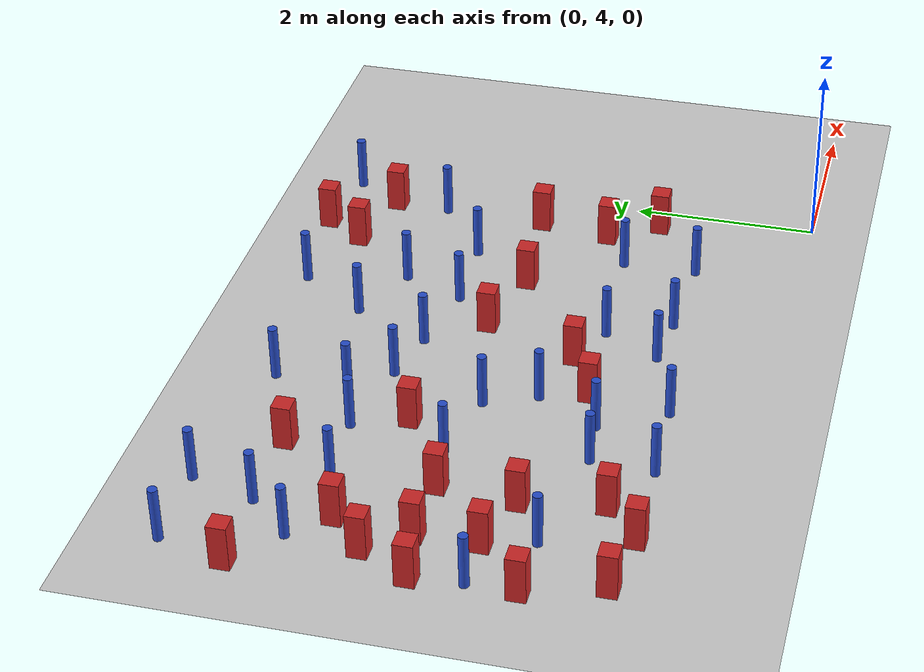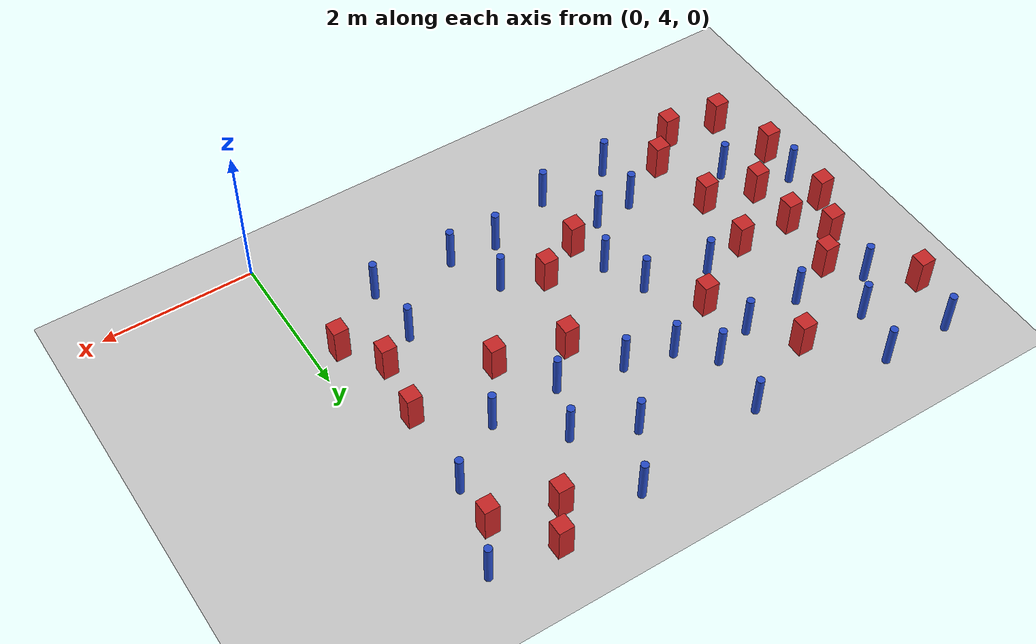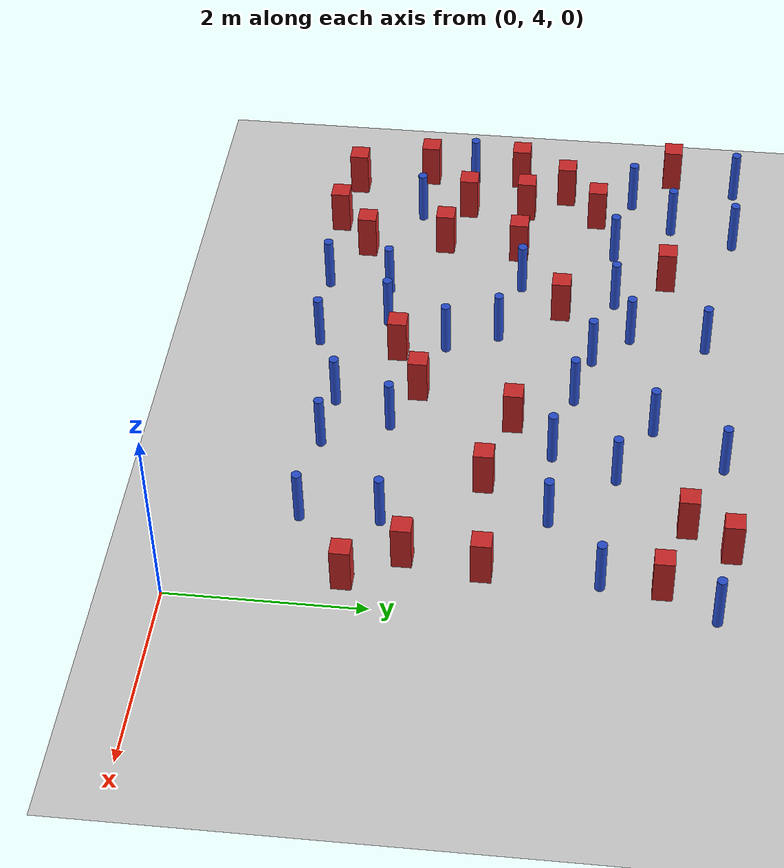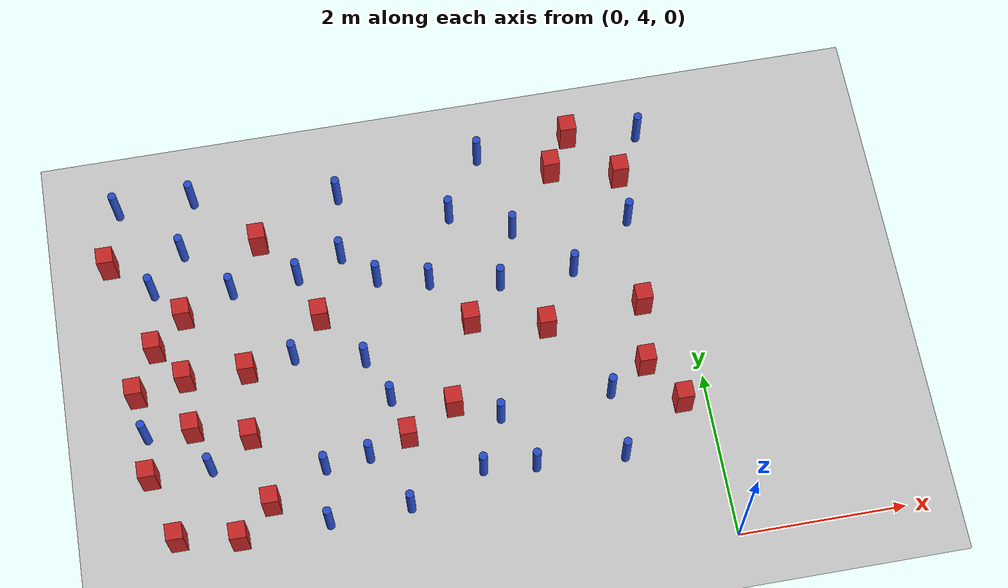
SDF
<sdf version="1.6">
 <world name="default">
  <model name="ground_plane">
   <static>1</static>
   <link name="link">
    <collision name="collision">
     <geometry><plane><normal>0 0 1</normal><size>100 100</size></plane></geometry>
     <surface><friction><ode><mu>100</mu><mu2>50</mu2></ode></friction></surface>
    </collision>
    <visual name="visual">
     <cast_shadows>0</cast_shadows>
     <geometry><plane><normal>0 0 1</normal><size>100 100</size></plane></geometry>
     <material>
      <ambient>1.0 1.0 1.0 1.0</ambient>
      <diffuse>0.8 0.8 0.8 1.0</diffuse>
      <specular>0.01 0.01 0.01 1.000000</specular>
     </material>
    </visual>
   </link>
  </model>
  <model name="pole_obstacle14">
   <static>true</static>
   <pose>-6.65724431521 9.31307978637 7.38925637345e-09 -8.471706928e-08 1.24976765081e-08 -1.74513093015e-07</pose>
   <link name="link">
    <pose>0 0 0.3 0 -0 0</pose>
    <inertial>
     <mass>1</mass>
     <inertia><ixx>0.145833</ixx><ixy>0</ixy><ixz>0</ixz><iyy>0.145833</iyy><iyz>0</iyz><izz>0.125</izz></inertia>
    </inertial>
    <collision name="collision">
     <geometry><cylinder><radius>0.05</radius><length>.6</length></cylinder></geometry>
    </collision>
    <visual name="visual">
     <geometry><cylinder><radius>0.05</radius><length>.6</length></cylinder></geometry>
     <material>
      <script><name>Gazebo/Blue</name><uri>file://media/materials/scripts/gazebo.material</uri></script>
     </material>
    </visual>
   </link>
  </model>
  <model name="pole_obstacle18">
   <static>true</static>
   <pose>-3.94830256166 6.85641512846 7.38925637345e-09 -8.47170692798e-08 1.24976765033e-08 -1.74513093019e-07</pose>
   <link name="link">
    <pose>0 0 0.3 0 -0 0</pose>
    <inertial>
     <mass>1</mass>
     <inertia><ixx>0.145833</ixx><ixy>0</ixy><ixz>0</ixz><iyy>0.145833</iyy><iyz>0</iyz><izz>0.125</izz></inertia>
    </inertial>
    <collision name="collision">
     <geometry><cylinder><radius>0.05</radius><length>.6</length></cylinder></geometry>
    </collision>
    <visual name="visual">
     <geometry><cylinder><radius>0.05</radius><length>.6</length></cylinder></geometry>
     <material>
      <script><name>Gazebo/Blue</name><uri>file://media/materials/scripts/gazebo.material</uri></script>
     </material>
    </visual>
   </link>
  </model>
  <model name="pole_obstacle19">
   <static>true</static>
   <pose>-5.73409821356 9.3143649348 7.38925637345e-09 -8.471706928e-08 1.24976765081e-08 -1.74513093015e-07</pose>
   <link name="link">
    <pose>0 0 0.3 0 -0 0</pose>
    <inertial>
     <mass>1</mass>
     <inertia><ixx>0.145833</ixx><ixy>0</ixy><ixz>0</ixz><iyy>0.145833</iyy><iyz>0</iyz><izz>0.125</izz></inertia>
    </inertial>
    <collision name="collision">
     <geometry><cylinder><radius>0.05</radius><length>.6</length></cylinder></geometry>
    </collision>
    <visual name="visual">
     <geometry><cylinder><radius>0.05</radius><length>.6</length></cylinder></geometry>
     <material>
      <script><name>Gazebo/Blue</name><uri>file://media/materials/scripts/gazebo.material</uri></script>
     </material>
    </visual>
   </link>
  </model>
  <model name="square_post_obstacle29">
   <static>true</static>
   <pose>-0.54596834898 7.0099108137 1.91545236811e-07 -7.35059704564e-06 1.12565212e-07 2.39332434364e-05</pose>
   <link name="link">
    <pose>0 0 0.25 0 -0 0</pose>
    <inertial>
     <mass>100</mass>
     <inertia>
      <ixx>0.166667</ixx>
      <ixy>0</ixy>
      <ixz>0</ixz>
      <iyy>0.166667</iyy>
      <iyz>0</iyz>
      <izz>0.166667</izz>
     </inertia>
    </inertial>
    <collision name="collision"><geometry><box><size>.2 .2 .5</size></box></geometry></collision>
    <visual name="visual">
     <geometry><box><size>.2 .2 .5</size></box></geometry>
     <material>
      <script><name>Gazebo/Red</name><uri>file://media/materials/scripts/gazebo.material</uri></script>
     </material>
    </visual>
   </link>
  </model>
  <model name="square_post_obstacle30">
   <static>true</static>
   <pose>-1.73514068617 6.91408948975 1.91545236811e-07 -7.35059704564e-06 1.12565212e-07 2.39332434364e-05</pose>
   <link name="link">
    <pose>0 0 0.25 0 -0 0</pose>
    <inertial>
     <mass>100</mass>
     <inertia>
      <ixx>0.166667</ixx>
      <ixy>0</ixy>
      <ixz>0</ixz>
      <iyy>0.166667</iyy>
      <iyz>0</iyz>
      <izz>0.166667</izz>
     </inertia>
    </inertial>
    <collision name="collision"><geometry><box><size>.2 .2 .5</size></box></geometry></collision>
    <visual name="visual">
     <geometry><box><size>.2 .2 .5</size></box></geometry>
     <material>
      <script><name>Gazebo/Red</name><uri>file://media/materials/scripts/gazebo.material</uri></script>
     </material>
    </visual>
   </link>
  </model>
  <model name="pole_obstacle40">
   <static>true</static>
   <pose>-0.168536304905 9.26986282409 7.38925637345e-09 -8.47170692797e-08 1.249767648e-08 -1.74513093033e-07</pose>
   <link name="link">
    <pose>0 0 0.3 0 -0 0</pose>
    <inertial>
     <mass>1</mass>
     <inertia><ixx>0.145833</ixx><ixy>0</ixy><ixz>0</ixz><iyy>0.145833</iyy><iyz>0</iyz><izz>0.125</izz></inertia>
    </inertial>
    <collision name="collision">
     <geometry><cylinder><radius>0.05</radius><length>.6</length></cylinder></geometry>
    </collision>
    <visual name="visual">
     <geometry><cylinder><radius>0.05</radius><length>.6</length></cylinder></geometry>
     <material>
      <script><name>Gazebo/Blue</name><uri>file://media/materials/scripts/gazebo.material</uri></script>
     </material>
    </visual>
   </link>
  </model>
  <model name="pole_obstacle44">
   <static>true</static>
   <pose>-3.96771649101 9.05856892354 7.38925637345e-09 -8.47170692798e-08 1.24976764891e-08 -1.74513093027e-07</pose>
   <link name="link">
    <pose>0 0 0.3 0 -0 0</pose>
    <inertial>
     <mass>1</mass>
     <inertia><ixx>0.145833</ixx><ixy>0</ixy><ixz>0</ixz><iyy>0.145833</iyy><iyz>0</iyz><izz>0.125</izz></inertia>
    </inertial>
    <collision name="collision">
     <geometry><cylinder><radius>0.05</radius><length>.6</length></cylinder></geometry>
    </collision>
    <visual name="visual">
     <geometry><cylinder><radius>0.05</radius><length>.6</length></cylinder></geometry>
     <material>
      <script><name>Gazebo/Blue</name><uri>file://media/materials/scripts/gazebo.material</uri></script>
     </material>
    </visual>
   </link>
  </model>
  <model name="square_post_obstacle40">
   <static>true</static>
   <pose>-0.49640123142 8.74005136101 1.91545236811e-07 -7.35059704564e-06 1.12565212e-07 2.39332434364e-05</pose>
   <link name="link">
    <pose>0 0 0.25 0 -0 0</pose>
    <inertial>
     <mass>100</mass>
     <inertia>
      <ixx>0.166667</ixx>
      <ixy>0</ixy>
      <ixz>0</ixz>
      <iyy>0.166667</iyy>
      <iyz>0</iyz>
      <izz>0.166667</izz>
     </inertia>
    </inertial>
    <collision name="collision"><geometry><box><size>.2 .2 .5</size></box></geometry></collision>
    <visual name="visual">
     <geometry><box><size>.2 .2 .5</size></box></geometry>
     <material>
      <script><name>Gazebo/Red</name><uri>file://media/materials/scripts/gazebo.material</uri></script>
     </material>
    </visual>
   </link>
  </model>
  <model name="pole_obstacle55">
   <static>true</static>
   <pose>-3.03343253801 7.72810647981 7.38925637345e-09 -8.47170692794e-08 1.24976764468e-08 -1.7451309304e-07</pose>
   <link name="link">
    <pose>0 0 0.3 0 -0 0</pose>
    <inertial>
     <mass>1</mass>
     <inertia><ixx>0.145833</ixx><ixy>0</ixy><ixz>0</ixz><iyy>0.145833</iyy><iyz>0</iyz><izz>0.125</izz></inertia>
    </inertial>
    <collision name="collision">
     <geometry><cylinder><radius>0.05</radius><length>.6</length></cylinder></geometry>
    </collision>
    <visual name="visual">
     <geometry><cylinder><radius>0.05</radius><length>.6</length></cylinder></geometry>
     <material>
      <script><name>Gazebo/Blue</name><uri>file://media/materials/scripts/gazebo.material</uri></script>
     </material>
    </visual>
   </link>
  </model>
  <model name="pole_obstacle58">
   <static>true</static>
   <pose>-6.63007110774 6.34107992533 7.38925637345e-09 -8.47170692796e-08 1.24976764786e-08 -1.74513093032e-07</pose>
   <link name="link">
    <pose>0 0 0.3 0 -0 0</pose>
    <inertial>
     <mass>1</mass>
     <inertia><ixx>0.145833</ixx><ixy>0</ixy><ixz>0</ixz><iyy>0.145833</iyy><iyz>0</iyz><izz>0.125</izz></inertia>
    </inertial>
    <collision name="collision">
     <geometry><cylinder><radius>0.05</radius><length>.6</length></cylinder></geometry>
    </collision>
    <visual name="visual">
     <geometry><cylinder><radius>0.05</radius><length>.6</length></cylinder></geometry>
     <material>
      <script><name>Gazebo/Blue</name><uri>file://media/materials/scripts/gazebo.material</uri></script>
     </material>
    </visual>
   </link>
  </model>
  <model name="square_post_obstacle45">
   <static>true</static>
   <pose>-5.35306952893 6.95543358452 1.91545236811e-07 -7.35059704564e-06 1.12565212e-07 2.39332434364e-05</pose>
   <link name="link">
    <pose>0 0 0.25 0 -0 0</pose>
    <inertial>
     <mass>100</mass>
     <inertia>
      <ixx>0.166667</ixx>
      <ixy>0</ixy>
      <ixz>0</ixz>
      <iyy>0.166667</iyy>
      <iyz>0</iyz>
      <izz>0.166667</izz>
     </inertia>
    </inertial>
    <collision name="collision"><geometry><box><size>.2 .2 .5</size></box></geometry></collision>
    <visual name="visual">
     <geometry><box><size>.2 .2 .5</size></box></geometry>
     <material>
      <script><name>Gazebo/Red</name><uri>file://media/materials/scripts/gazebo.material</uri></script>
     </material>
    </visual>
   </link>
  </model>
  <model name="pole_obstacle64">
   <static>true</static>
   <pose>-3.72118966938 6.31509524811 7.38925637345e-09 -8.47170692794e-08 1.24976764468e-08 -1.7451309304e-07</pose>
   <link name="link">
    <pose>0 0 0.3 0 -0 0</pose>
    <inertial>
     <mass>1</mass>
     <inertia><ixx>0.145833</ixx><ixy>0</ixy><ixz>0</ixz><iyy>0.145833</iyy><iyz>0</iyz><izz>0.125</izz></inertia>
    </inertial>
    <collision name="collision">
     <geometry><cylinder><radius>0.05</radius><length>.6</length></cylinder></geometry>
    </collision>
    <visual name="visual">
     <geometry><cylinder><radius>0.05</radius><length>.6</length></cylinder></geometry>
     <material>
      <script><name>Gazebo/Blue</name><uri>file://media/materials/scripts/gazebo.material</uri></script>
     </material>
    </visual>
   </link>
  </model>
  <model name="pole_obstacle81">
   <static>true</static>
   <pose>-4.0743057369 5.65410516733 7.38925637345e-09 -8.47170692796e-08 1.24976764786e-08 -1.74513093032e-07</pose>
   <link name="link">
    <pose>0 0 0.3 0 -0 0</pose>
    <inertial>
     <mass>1</mass>
     <inertia><ixx>0.145833</ixx><ixy>0</ixy><ixz>0</ixz><iyy>0.145833</iyy><iyz>0</iyz><izz>0.125</izz></inertia>
    </inertial>
    <collision name="collision">
     <geometry><cylinder><radius>0.05</radius><length>.6</length></cylinder></geometry>
    </collision>
    <visual name="visual">
     <geometry><cylinder><radius>0.05</radius><length>.6</length></cylinder></geometry>
     <material>
      <script><name>Gazebo/Blue</name><uri>file://media/materials/scripts/gazebo.material</uri></script>
     </material>
    </visual>
   </link>
  </model>
  <model name="square_post_obstacle77">
   <static>true</static>
   <pose>-1.31847730398 8.95200635212 1.91545236811e-07 -7.35059704564e-06 1.12565212e-07 2.39332434364e-05</pose>
   <link name="link">
    <pose>0 0 0.25 0 -0 0</pose>
    <inertial>
     <mass>100</mass>
     <inertia>
      <ixx>0.166667</ixx>
      <ixy>0</ixy>
      <ixz>0</ixz>
      <iyy>0.166667</iyy>
      <iyz>0</iyz>
      <izz>0.166667</izz>
     </inertia>
    </inertial>
    <collision name="collision"><geometry><box><size>.2 .2 .5</size></box></geometry></collision>
    <visual name="visual">
     <geometry><box><size>.2 .2 .5</size></box></geometry>
     <material>
      <script><name>Gazebo/Red</name><uri>file://media/materials/scripts/gazebo.material</uri></script>
     </material>
    </visual>
   </link>
  </model>
  <model name="pole_obstacle89">
   <static>true</static>
   <pose>-2.4753903655 5.87753320103 7.38925637345e-09 -8.47170692798e-08 1.24976765033e-08 -1.74513093019e-07</pose>
   <link name="link">
    <pose>0 0 0.3 0 -0 0</pose>
    <inertial>
     <mass>1</mass>
     <inertia><ixx>0.145833</ixx><ixy>0</ixy><ixz>0</ixz><iyy>0.145833</iyy><iyz>0</iyz><izz>0.125</izz></inertia>
    </inertial>
    <collision name="collision">
     <geometry><cylinder><radius>0.05</radius><length>.6</length></cylinder></geometry>
    </collision>
    <visual name="visual">
     <geometry><cylinder><radius>0.05</radius><length>.6</length></cylinder></geometry>
     <material>
      <script><name>Gazebo/Blue</name><uri>file://media/materials/scripts/gazebo.material</uri></script>
     </material>
    </visual>
   </link>
  </model>
  <model name="square_post_obstacle83">
   <static>true</static>
   <pose>-0.318899322159 5.69597162464 1.91545236811e-07 -7.35059704564e-06 1.12565212e-07 2.39332434364e-05</pose>
   <link name="link">
    <pose>0 0 0.25 0 -0 0</pose>
    <inertial>
     <mass>100</mass>
     <inertia>
      <ixx>0.166667</ixx>
      <ixy>0</ixy>
      <ixz>0</ixz>
      <iyy>0.166667</iyy>
      <iyz>0</iyz>
      <izz>0.166667</izz>
     </inertia>
    </inertial>
    <collision name="collision"><geometry><box><size>.2 .2 .5</size></box></geometry></collision>
    <visual name="visual">
     <geometry><box><size>.2 .2 .5</size></box></geometry>
     <material>
      <script><name>Gazebo/Red</name><uri>file://media/materials/scripts/gazebo.material</uri></script>
     </material>
    </visual>
   </link>
  </model>
  <model name="pole_obstacle93">
   <static>true</static>
   <pose>-1.92357783265 8.22406521288 7.38925637345e-09 -8.47170692798e-08 1.24976764881e-08 -1.74513093027e-07</pose>
   <link name="link">
    <pose>0 0 0.3 0 -0 0</pose>
    <inertial>
     <mass>1</mass>
     <inertia><ixx>0.145833</ixx><ixy>0</ixy><ixz>0</ixz><iyy>0.145833</iyy><iyz>0</iyz><izz>0.125</izz></inertia>
    </inertial>
    <collision name="collision">
     <geometry><cylinder><radius>0.05</radius><length>.6</length></cylinder></geometry>
    </collision>
    <visual name="visual">
     <geometry><cylinder><radius>0.05</radius><length>.6</length></cylinder></geometry>
     <material>
      <script><name>Gazebo/Blue</name><uri>file://media/materials/scripts/gazebo.material</uri></script>
     </material>
    </visual>
   </link>
  </model>
  <model name="square_post_obstacle86">
   <static>true</static>
   <pose>-2.62289713902 7.12899790153 1.91545236811e-07 -7.35059704564e-06 1.12565212e-07 2.39332434364e-05</pose>
   <link name="link">
    <pose>0 0 0.25 0 -0 0</pose>
    <inertial>
     <mass>100</mass>
     <inertia>
      <ixx>0.166667</ixx>
      <ixy>0</ixy>
      <ixz>0</ixz>
      <iyy>0.166667</iyy>
      <iyz>0</iyz>
      <izz>0.166667</izz>
     </inertia>
    </inertial>
    <collision name="collision"><geometry><box><size>.2 .2 .5</size></box></geometry></collision>
    <visual name="visual">
     <geometry><box><size>.2 .2 .5</size></box></geometry>
     <material>
      <script><name>Gazebo/Red</name><uri>file://media/materials/scripts/gazebo.material</uri></script>
     </material>
    </visual>
   </link>
  </model>
  <model name="pole_obstacle94">
   <static>true</static>
   <pose>-2.18110208999 9.29415893243 7.38925637345e-09 -8.47170692793e-08 1.24976764408e-08 -1.74513093041e-07</pose>
   <link name="link">
    <pose>0 0 0.3 0 -0 0</pose>
    <inertial>
     <mass>1</mass>
     <inertia><ixx>0.145833</ixx><ixy>0</ixy><ixz>0</ixz><iyy>0.145833</iyy><iyz>0</iyz><izz>0.125</izz></inertia>
    </inertial>
    <collision name="collision">
     <geometry><cylinder><radius>0.05</radius><length>.6</length></cylinder></geometry>
    </collision>
    <visual name="visual">
     <geometry><cylinder><radius>0.05</radius><length>.6</length></cylinder></geometry>
     <material>
      <script><name>Gazebo/Blue</name><uri>file://media/materials/scripts/gazebo.material</uri></script>
     </material>
    </visual>
   </link>
  </model>
  <model name="square_post_obstacle87">
   <static>true</static>
   <pose>-6.02076843727 7.78362114557 1.91545236811e-07 -7.35059704564e-06 1.12565212e-07 2.39332434364e-05</pose>
   <link name="link">
    <pose>0 0 0.25 0 -0 0</pose>
    <inertial>
     <mass>100</mass>
     <inertia>
      <ixx>0.166667</ixx>
      <ixy>0</ixy>
      <ixz>0</ixz>
      <iyy>0.166667</iyy>
      <iyz>0</iyz>
      <izz>0.166667</izz>
     </inertia>
    </inertial>
    <collision name="collision"><geometry><box><size>.2 .2 .5</size></box></geometry></collision>
    <visual name="visual">
     <geometry><box><size>.2 .2 .5</size></box></geometry>
     <material>
      <script><name>Gazebo/Red</name><uri>file://media/materials/scripts/gazebo.material</uri></script>
     </material>
    </visual>
   </link>
  </model>
  <model name="pole_obstacle95">
   <static>true</static>
   <pose>-1.11368518791 5.15342470766 7.38925637345e-09 -8.47170692799e-08 1.24976765033e-08 -1.74513093018e-07</pose>
   <link name="link">
    <pose>0 0 0.3 0 -0 0</pose>
    <inertial>
     <mass>1</mass>
     <inertia><ixx>0.145833</ixx><ixy>0</ixy><ixz>0</ixz><iyy>0.145833</iyy><iyz>0</iyz><izz>0.125</izz></inertia>
    </inertial>
    <collision name="collision">
     <geometry><cylinder><radius>0.05</radius><length>.6</length></cylinder></geometry>
    </collision>
    <visual name="visual">
     <geometry><cylinder><radius>0.05</radius><length>.6</length></cylinder></geometry>
     <material>
      <script><name>Gazebo/Blue</name><uri>file://media/materials/scripts/gazebo.material</uri></script>
     </material>
    </visual>
   </link>
  </model>
  <model name="pole_obstacle101">
   <static>true</static>
   <pose>-4.04133653626 8.25679321182 7.38925637345e-09 -8.47170692799e-08 1.24976765075e-08 -1.74513093015e-07</pose>
   <link name="link">
    <pose>0 0 0.3 0 -0 0</pose>
    <inertial>
     <mass>1</mass>
     <inertia><ixx>0.145833</ixx><ixy>0</ixy><ixz>0</ixz><iyy>0.145833</iyy><iyz>0</iyz><izz>0.125</izz></inertia>
    </inertial>
    <collision name="collision">
     <geometry><cylinder><radius>0.05</radius><length>.6</length></cylinder></geometry>
    </collision>
    <visual name="visual">
     <geometry><cylinder><radius>0.05</radius><length>.6</length></cylinder></geometry>
     <material>
      <script><name>Gazebo/Blue</name><uri>file://media/materials/scripts/gazebo.material</uri></script>
     </material>
    </visual>
   </link>
  </model>
  <model name="square_post_obstacle97">
   <static>true</static>
   <pose>-6.0955663826 6.9774291741 1.91545236811e-07 -7.35059704564e-06 1.12565212e-07 2.39332434364e-05</pose>
   <link name="link">
    <pose>0 0 0.25 0 -0 0</pose>
    <inertial>
     <mass>100</mass>
     <inertia>
      <ixx>0.166667</ixx>
      <ixy>0</ixy>
      <ixz>0</ixz>
      <iyy>0.166667</iyy>
      <iyz>0</iyz>
      <izz>0.166667</izz>
     </inertia>
    </inertial>
    <collision name="collision"><geometry><box><size>.2 .2 .5</size></box></geometry></collision>
    <visual name="visual">
     <geometry><box><size>.2 .2 .5</size></box></geometry>
     <material>
      <script><name>Gazebo/Red</name><uri>file://media/materials/scripts/gazebo.material</uri></script>
     </material>
    </visual>
   </link>
  </model>
  <model name="pole_obstacle103">
   <static>true</static>
   <pose>-5.93282895917 8.62434946454 7.38925637345e-09 -8.471706928e-08 1.24976765081e-08 -1.74513093015e-07</pose>
   <link name="link">
    <pose>0 0 0.3 0 -0 0</pose>
    <inertial>
     <mass>1</mass>
     <inertia><ixx>0.145833</ixx><ixy>0</ixy><ixz>0</ixz><iyy>0.145833</iyy><iyz>0</iyz><izz>0.125</izz></inertia>
    </inertial>
    <collision name="collision">
     <geometry><cylinder><radius>0.05</radius><length>.6</length></cylinder></geometry>
    </collision>
    <visual name="visual">
     <geometry><cylinder><radius>0.05</radius><length>.6</length></cylinder></geometry>
     <material>
      <script><name>Gazebo/Blue</name><uri>file://media/materials/scripts/gazebo.material</uri></script>
     </material>
    </visual>
   </link>
  </model>
  <model name="pole_obstacle105">
   <static>true</static>
   <pose>-4.59590723522 8.06211399901 7.38925637345e-09 -8.471706928e-08 1.24976765081e-08 -1.74513093015e-07</pose>
   <link name="link">
    <pose>0 0 0.3 0 -0 0</pose>
    <inertial>
     <mass>1</mass>
     <inertia><ixx>0.145833</ixx><ixy>0</ixy><ixz>0</ixz><iyy>0.145833</iyy><iyz>0</iyz><izz>0.125</izz></inertia>
    </inertial>
    <collision name="collision">
     <geometry><cylinder><radius>0.05</radius><length>.6</length></cylinder></geometry>
    </collision>
    <visual name="visual">
     <geometry><cylinder><radius>0.05</radius><length>.6</length></cylinder></geometry>
     <material>
      <script><name>Gazebo/Blue</name><uri>file://media/materials/scripts/gazebo.material</uri></script>
     </material>
    </visual>
   </link>
  </model>
  <model name="pole_obstacle110">
   <static>true</static>
   <pose>-0.499389404956 8.14585939029 7.38925637345e-09 -8.47170692799e-08 1.24976764918e-08 -1.74513093025e-07</pose>
   <link name="link">
    <pose>0 0 0.3 0 -0 0</pose>
    <inertial>
     <mass>1</mass>
     <inertia><ixx>0.145833</ixx><ixy>0</ixy><ixz>0</ixz><iyy>0.145833</iyy><iyz>0</iyz><izz>0.125</izz></inertia>
    </inertial>
    <collision name="collision">
     <geometry><cylinder><radius>0.05</radius><length>.6</length></cylinder></geometry>
    </collision>
    <visual name="visual">
     <geometry><cylinder><radius>0.05</radius><length>.6</length></cylinder></geometry>
     <material>
      <script><name>Gazebo/Blue</name><uri>file://media/materials/scripts/gazebo.material</uri></script>
     </material>
    </visual>
   </link>
  </model>
  <model name="square_post_obstacle109">
   <static>true</static>
   <pose>-6.41005130345 7.41250749002 1.91545236811e-07 -7.35059704564e-06 1.12565212e-07 2.39332434364e-05</pose>
   <link name="link">
    <pose>0 0 0.25 0 -0 0</pose>
    <inertial>
     <mass>100</mass>
     <inertia>
      <ixx>0.166667</ixx>
      <ixy>0</ixy>
      <ixz>0</ixz>
      <iyy>0.166667</iyy>
      <iyz>0</iyz>
      <izz>0.166667</izz>
     </inertia>
    </inertial>
    <collision name="collision"><geometry><box><size>.2 .2 .5</size></box></geometry></collision>
    <visual name="visual">
     <geometry><box><size>.2 .2 .5</size></box></geometry>
     <material>
      <script><name>Gazebo/Red</name><uri>file://media/materials/scripts/gazebo.material</uri></script>
     </material>
    </visual>
   </link>
  </model>
  <model name="pole_obstacle114">
   <static>true</static>
   <pose>-4.7825674711 7.0360835841 7.38925637345e-09 -8.47170692796e-08 1.24976764786e-08 -1.74513093032e-07</pose>
   <link name="link">
    <pose>0 0 0.3 0 -0 0</pose>
    <inertial>
     <mass>1</mass>
     <inertia><ixx>0.145833</ixx><ixy>0</ixy><ixz>0</ixz><iyy>0.145833</iyy><iyz>0</iyz><izz>0.125</izz></inertia>
    </inertial>
    <collision name="collision">
     <geometry><cylinder><radius>0.05</radius><length>.6</length></cylinder></geometry>
    </collision>
    <visual name="visual">
     <geometry><cylinder><radius>0.05</radius><length>.6</length></cylinder></geometry>
     <material>
      <script><name>Gazebo/Blue</name><uri>file://media/materials/scripts/gazebo.material</uri></script>
     </material>
    </visual>
   </link>
  </model>
  <model name="pole_obstacle115">
   <static>true</static>
   <pose>-5.92289605248 5.81496908676 7.38925637345e-09 -8.47170692796e-08 1.24976764786e-08 -1.74513093032e-07</pose>
   <link name="link">
    <pose>0 0 0.3 0 -0 0</pose>
    <inertial>
     <mass>1</mass>
     <inertia><ixx>0.145833</ixx><ixy>0</ixy><ixz>0</ixz><iyy>0.145833</iyy><iyz>0</iyz><izz>0.125</izz></inertia>
    </inertial>
    <collision name="collision">
     <geometry><cylinder><radius>0.05</radius><length>.6</length></cylinder></geometry>
    </collision>
    <visual name="visual">
     <geometry><cylinder><radius>0.05</radius><length>.6</length></cylinder></geometry>
     <material>
      <script><name>Gazebo/Blue</name><uri>file://media/materials/scripts/gazebo.material</uri></script>
     </material>
    </visual>
   </link>
  </model>
  <model name="square_post_obstacle113">
   <static>true</static>
   <pose>-3.00015064955 6.10984477536 1.91545236811e-07 -7.35059704564e-06 1.12565212e-07 2.39332434364e-05</pose>
   <link name="link">
    <pose>0 0 0.25 0 -0 0</pose>
    <inertial>
     <mass>100</mass>
     <inertia>
      <ixx>0.166667</ixx>
      <ixy>0</ixy>
      <ixz>0</ixz>
      <iyy>0.166667</iyy>
      <iyz>0</iyz>
      <izz>0.166667</izz>
     </inertia>
    </inertial>
    <collision name="collision"><geometry><box><size>.2 .2 .5</size></box></geometry></collision>
    <visual name="visual">
     <geometry><box><size>.2 .2 .5</size></box></geometry>
     <material>
      <script><name>Gazebo/Red</name><uri>file://media/materials/scripts/gazebo.material</uri></script>
     </material>
    </visual>
   </link>
  </model>
  <model name="square_post_obstacle117">
   <static>true</static>
   <pose>-5.69827234079 4.91864528332 1.91545236811e-07 -7.35059704564e-06 1.12565212e-07 2.39332434364e-05</pose>
   <link name="link">
    <pose>0 0 0.25 0 -0 0</pose>
    <inertial>
     <mass>100</mass>
     <inertia>
      <ixx>0.166667</ixx>
      <ixy>0</ixy>
      <ixz>0</ixz>
      <iyy>0.166667</iyy>
      <iyz>0</iyz>
      <izz>0.166667</izz>
     </inertia>
    </inertial>
    <collision name="collision"><geometry><box><size>.2 .2 .5</size></box></geometry></collision>
    <visual name="visual">
     <geometry><box><size>.2 .2 .5</size></box></geometry>
     <material>
      <script><name>Gazebo/Red</name><uri>file://media/materials/scripts/gazebo.material</uri></script>
     </material>
    </visual>
   </link>
  </model>
  <model name="pole_obstacle127">
   <static>true</static>
   <pose>-1.27624240692 7.59180966603 7.38925637345e-09 -8.47170692799e-08 1.24976765033e-08 -1.74513093018e-07</pose>
   <link name="link">
    <pose>0 0 0.3 0 -0 0</pose>
    <inertial>
     <mass>1</mass>
     <inertia><ixx>0.145833</ixx><ixy>0</ixy><ixz>0</ixz><iyy>0.145833</iyy><iyz>0</iyz><izz>0.125</izz></inertia>
    </inertial>
    <collision name="collision">
     <geometry><cylinder><radius>0.05</radius><length>.6</length></cylinder></geometry>
    </collision>
    <visual name="visual">
     <geometry><cylinder><radius>0.05</radius><length>.6</length></cylinder></geometry>
     <material>
      <script><name>Gazebo/Blue</name><uri>file://media/materials/scripts/gazebo.material</uri></script>
     </material>
    </visual>
   </link>
  </model>
  <model name="square_post_obstacle123">
   <static>true</static>
   <pose>-5.00601690627 8.60214971991 1.91545236811e-07 -7.35059704564e-06 1.12565212e-07 2.39332434364e-05</pose>
   <link name="link">
    <pose>0 0 0.25 0 -0 0</pose>
    <inertial>
     <mass>100</mass>
     <inertia>
      <ixx>0.166667</ixx>
      <ixy>0</ixy>
      <ixz>0</ixz>
      <iyy>0.166667</iyy>
      <iyz>0</iyz>
      <izz>0.166667</izz>
     </inertia>
    </inertial>
    <collision name="collision"><geometry><box><size>.2 .2 .5</size></box></geometry></collision>
    <visual name="visual">
     <geometry><box><size>.2 .2 .5</size></box></geometry>
     <material>
      <script><name>Gazebo/Red</name><uri>file://media/materials/scripts/gazebo.material</uri></script>
     </material>
    </visual>
   </link>
  </model>
  <model name="pole_obstacle130">
   <static>true</static>
   <pose>-1.13058666192 5.95412318273 7.38925637345e-09 -8.47170692799e-08 1.24976765033e-08 -1.74513093018e-07</pose>
   <link name="link">
    <pose>0 0 0.3 0 -0 0</pose>
    <inertial>
     <mass>1</mass>
     <inertia><ixx>0.145833</ixx><ixy>0</ixy><ixz>0</ixz><iyy>0.145833</iyy><iyz>0</iyz><izz>0.125</izz></inertia>
    </inertial>
    <collision name="collision">
     <geometry><cylinder><radius>0.05</radius><length>.6</length></cylinder></geometry>
    </collision>
    <visual name="visual">
     <geometry><cylinder><radius>0.05</radius><length>.6</length></cylinder></geometry>
     <material>
      <script><name>Gazebo/Blue</name><uri>file://media/materials/scripts/gazebo.material</uri></script>
     </material>
    </visual>
   </link>
  </model>
  <model name="pole_obstacle134">
   <static>true</static>
   <pose>-2.655582754 8.5629780234 7.38925637345e-09 -8.47170692793e-08 1.24976764408e-08 -1.74513093041e-07</pose>
   <link name="link">
    <pose>0 0 0.3 0 -0 0</pose>
    <inertial>
     <mass>1</mass>
     <inertia><ixx>0.145833</ixx><ixy>0</ixy><ixz>0</ixz><iyy>0.145833</iyy><iyz>0</iyz><izz>0.125</izz></inertia>
    </inertial>
    <collision name="collision">
     <geometry><cylinder><radius>0.05</radius><length>.6</length></cylinder></geometry>
    </collision>
    <visual name="visual">
     <geometry><cylinder><radius>0.05</radius><length>.6</length></cylinder></geometry>
     <material>
      <script><name>Gazebo/Blue</name><uri>file://media/materials/scripts/gazebo.material</uri></script>
     </material>
    </visual>
   </link>
  </model>
  <model name="pole_obstacle140">
   <static>true</static>
   <pose>-3.69137399974 4.96681487356 7.38925637345e-09 -8.47170692798e-08 1.24976765033e-08 -1.74513093019e-07</pose>
   <link name="link">
    <pose>0 0 0.3 0 -0 0</pose>
    <inertial>
     <mass>1</mass>
     <inertia><ixx>0.145833</ixx><ixy>0</ixy><ixz>0</ixz><iyy>0.145833</iyy><iyz>0</iyz><izz>0.125</izz></inertia>
    </inertial>
    <collision name="collision">
     <geometry><cylinder><radius>0.05</radius><length>.6</length></cylinder></geometry>
    </collision>
    <visual name="visual">
     <geometry><cylinder><radius>0.05</radius><length>.6</length></cylinder></geometry>
     <material>
      <script><name>Gazebo/Blue</name><uri>file://media/materials/scripts/gazebo.material</uri></script>
     </material>
    </visual>
   </link>
  </model>
  <model name="square_post_obstacle135">
   <static>true</static>
   <pose>-6.84375448007 8.6003326231 1.91545236811e-07 -7.35059704564e-06 1.12565212e-07 2.39332434364e-05</pose>
   <link name="link">
    <pose>0 0 0.25 0 -0 0</pose>
    <inertial>
     <mass>100</mass>
     <inertia>
      <ixx>0.166667</ixx>
      <ixy>0</ixy>
      <ixz>0</ixz>
      <iyy>0.166667</iyy>
      <iyz>0</iyz>
      <izz>0.166667</izz>
     </inertia>
    </inertial>
    <collision name="collision"><geometry><box><size>.2 .2 .5</size></box></geometry></collision>
    <visual name="visual">
     <geometry><box><size>.2 .2 .5</size></box></geometry>
     <material>
      <script><name>Gazebo/Red</name><uri>file://media/materials/scripts/gazebo.material</uri></script>
     </material>
    </visual>
   </link>
  </model>
  <model name="square_post_obstacle142">
   <static>true</static>
   <pose>-6.64653705427 5.83007264289 1.91545236811e-07 -7.35059704564e-06 1.12565212e-07 2.39332434364e-05</pose>
   <link name="link">
    <pose>0 0 0.25 0 -0 0</pose>
    <inertial>
     <mass>100</mass>
     <inertia>
      <ixx>0.166667</ixx>
      <ixy>0</ixy>
      <ixz>0</ixz>
      <iyy>0.166667</iyy>
      <iyz>0</iyz>
      <izz>0.166667</izz>
     </inertia>
    </inertial>
    <collision name="collision"><geometry><box><size>.2 .2 .5</size></box></geometry></collision>
    <visual name="visual">
     <geometry><box><size>.2 .2 .5</size></box></geometry>
     <material>
      <script><name>Gazebo/Red</name><uri>file://media/materials/scripts/gazebo.material</uri></script>
     </material>
    </visual>
   </link>
  </model>
  <model name="square_post_obstacle144">
   <static>true</static>
   <pose>-6.41000166702 5.03154587627 1.91545236811e-07 -7.35059704564e-06 1.12565212e-07 2.39332434364e-05</pose>
   <link name="link">
    <pose>0 0 0.25 0 -0 0</pose>
    <inertial>
     <mass>100</mass>
     <inertia>
      <ixx>0.166667</ixx>
      <ixy>0</ixy>
      <ixz>0</ixz>
      <iyy>0.166667</iyy>
      <iyz>0</iyz>
      <izz>0.166667</izz>
     </inertia>
    </inertial>
    <collision name="collision"><geometry><box><size>.2 .2 .5</size></box></geometry></collision>
    <visual name="visual">
     <geometry><box><size>.2 .2 .5</size></box></geometry>
     <material>
      <script><name>Gazebo/Red</name><uri>file://media/materials/scripts/gazebo.material</uri></script>
     </material>
    </visual>
   </link>
  </model>
  <model name="square_post_obstacle146">
   <static>true</static>
   <pose>-6.0804490282 6.32548722896 1.91545236811e-07 -7.35059704564e-06 1.12565212e-07 2.39332434364e-05</pose>
   <link name="link">
    <pose>0 0 0.25 0 -0 0</pose>
    <inertial>
     <mass>100</mass>
     <inertia>
      <ixx>0.166667</ixx>
      <ixy>0</ixy>
      <ixz>0</ixz>
      <iyy>0.166667</iyy>
      <iyz>0</iyz>
      <izz>0.166667</izz>
     </inertia>
    </inertial>
    <collision name="collision"><geometry><box><size>.2 .2 .5</size></box></geometry></collision>
    <visual name="visual">
     <geometry><box><size>.2 .2 .5</size></box></geometry>
     <material>
      <script><name>Gazebo/Red</name><uri>file://media/materials/scripts/gazebo.material</uri></script>
     </material>
    </visual>
   </link>
  </model>
  <model name="pole_obstacle157">
   <static>true</static>
   <pose>-4.65096133645 4.93446272386 7.38925637345e-09 -8.47170692796e-08 1.24976764786e-08 -1.74513093032e-07</pose>
   <link name="link">
    <pose>0 0 0.3 0 -0 0</pose>
    <inertial>
     <mass>1</mass>
     <inertia><ixx>0.145833</ixx><ixy>0</ixy><ixz>0</ixz><iyy>0.145833</iyy><iyz>0</iyz><izz>0.125</izz></inertia>
    </inertial>
    <collision name="collision">
     <geometry><cylinder><radius>0.05</radius><length>.6</length></cylinder></geometry>
    </collision>
    <visual name="visual">
     <geometry><cylinder><radius>0.05</radius><length>.6</length></cylinder></geometry>
     <material>
      <script><name>Gazebo/Blue</name><uri>file://media/materials/scripts/gazebo.material</uri></script>
     </material>
    </visual>
   </link>
  </model>
  <model name="square_post_obstacle153">
   <static>true</static>
   <pose>-6.6897986551 6.87103230087 1.91545236811e-07 -7.35059704564e-06 1.12565212e-07 2.39332434364e-05</pose>
   <link name="link">
    <pose>0 0 0.25 0 -0 0</pose>
    <inertial>
     <mass>100</mass>
     <inertia>
      <ixx>0.166667</ixx>
      <ixy>0</ixy>
      <ixz>0</ixz>
      <iyy>0.166667</iyy>
      <iyz>0</iyz>
      <izz>0.166667</izz>
     </inertia>
    </inertial>
    <collision name="collision"><geometry><box><size>.2 .2 .5</size></box></geometry></collision>
    <visual name="visual">
     <geometry><box><size>.2 .2 .5</size></box></geometry>
     <material>
      <script><name>Gazebo/Red</name><uri>file://media/materials/scripts/gazebo.material</uri></script>
     </material>
    </visual>
   </link>
  </model>
  <model name="pole_obstacle159">
   <static>true</static>
   <pose>-4.60569633031 5.60082349749 7.38925637345e-09 -8.47170692796e-08 1.24976764786e-08 -1.74513093032e-07</pose>
   <link name="link">
    <pose>0 0 0.3 0 -0 0</pose>
    <inertial>
     <mass>1</mass>
     <inertia><ixx>0.145833</ixx><ixy>0</ixy><ixz>0</ixz><iyy>0.145833</iyy><iyz>0</iyz><izz>0.125</izz></inertia>
    </inertial>
    <collision name="collision">
     <geometry><cylinder><radius>0.05</radius><length>.6</length></cylinder></geometry>
    </collision>
    <visual name="visual">
     <geometry><cylinder><radius>0.05</radius><length>.6</length></cylinder></geometry>
     <material>
      <script><name>Gazebo/Blue</name><uri>file://media/materials/scripts/gazebo.material</uri></script>
     </material>
    </visual>
   </link>
  </model>
  <model name="pole_obstacle164">
   <static>true</static>
   <pose>-2.78766719084 5.26942586034 7.38925637345e-09 -8.47170692798e-08 1.24976765033e-08 -1.74513093019e-07</pose>
   <link name="link">
    <pose>0 0 0.3 0 -0 0</pose>
    <inertial>
     <mass>1</mass>
     <inertia><ixx>0.145833</ixx><ixy>0</ixy><ixz>0</ixz><iyy>0.145833</iyy><iyz>0</iyz><izz>0.125</izz></inertia>
    </inertial>
    <collision name="collision">
     <geometry><cylinder><radius>0.05</radius><length>.6</length></cylinder></geometry>
    </collision>
    <visual name="visual">
     <geometry><cylinder><radius>0.05</radius><length>.6</length></cylinder></geometry>
     <material>
      <script><name>Gazebo/Blue</name><uri>file://media/materials/scripts/gazebo.material</uri></script>
     </material>
    </visual>
   </link>
  </model>
  <model name="square_post_obstacle165">
   <static>true</static>
   <pose>-5.41922749107 6.13023761637 1.91545236811e-07 -7.35059704564e-06 1.12565212e-07 2.39332434364e-05</pose>
   <link name="link">
    <pose>0 0 0.25 0 -0 0</pose>
    <inertial>
     <mass>100</mass>
     <inertia>
      <ixx>0.166667</ixx>
      <ixy>0</ixy>
      <ixz>0</ixz>
      <iyy>0.166667</iyy>
      <iyz>0</iyz>
      <izz>0.166667</izz>
     </inertia>
    </inertial>
    <collision name="collision"><geometry><box><size>.2 .2 .5</size></box></geometry></collision>
    <visual name="visual">
     <geometry><box><size>.2 .2 .5</size></box></geometry>
     <material>
      <script><name>Gazebo/Red</name><uri>file://media/materials/scripts/gazebo.material</uri></script>
     </material>
    </visual>
   </link>
  </model>
  <model name="square_post_obstacle173">
   <static>true</static>
   <pose>-4.40329124783 7.48956742151 1.91545236811e-07 -7.35059704564e-06 1.12565212e-07 2.39332434364e-05</pose>
   <link name="link">
    <pose>0 0 0.25 0 -0 0</pose>
    <inertial>
     <mass>100</mass>
     <inertia>
      <ixx>0.166667</ixx>
      <ixy>0</ixy>
      <ixz>0</ixz>
      <iyy>0.166667</iyy>
      <iyz>0</iyz>
      <izz>0.166667</izz>
     </inertia>
    </inertial>
    <collision name="collision"><geometry><box><size>.2 .2 .5</size></box></geometry></collision>
    <visual name="visual">
     <geometry><box><size>.2 .2 .5</size></box></geometry>
     <material>
      <script><name>Gazebo/Red</name><uri>file://media/materials/scripts/gazebo.material</uri></script>
     </material>
    </visual>
   </link>
  </model>
  <model name="square_post_obstacle181">
   <static>true</static>
   <pose>-5.28344546473 5.27466247444 1.91545236811e-07 -7.35059704564e-06 1.12565212e-07 2.39332434364e-05</pose>
   <link name="link">
    <pose>0 0 0.25 0 -0 0</pose>
    <inertial>
     <mass>100</mass>
     <inertia>
      <ixx>0.166667</ixx>
      <ixy>0</ixy>
      <ixz>0</ixz>
      <iyy>0.166667</iyy>
      <iyz>0</iyz>
      <izz>0.166667</izz>
     </inertia>
    </inertial>
    <collision name="collision"><geometry><box><size>.2 .2 .5</size></box></geometry></collision>
    <visual name="visual">
     <geometry><box><size>.2 .2 .5</size></box></geometry>
     <material>
      <script><name>Gazebo/Red</name><uri>file://media/materials/scripts/gazebo.material</uri></script>
     </material>
    </visual>
   </link>
  </model>
  <model name="square_post_obstacle190">
   <static>true</static>
   <pose>-1.03024616309 9.38863650205 1.91545236811e-07 -7.35059704564e-06 1.12565212e-07 2.39332434364e-05</pose>
   <link name="link">
    <pose>0 0 0.25 0 -0 0</pose>
    <inertial>
     <mass>100</mass>
     <inertia>
      <ixx>0.166667</ixx>
      <ixy>0</ixy>
      <ixz>0</ixz>
      <iyy>0.166667</iyy>
      <iyz>0</iyz>
      <izz>0.166667</izz>
     </inertia>
    </inertial>
    <collision name="collision"><geometry><box><size>.2 .2 .5</size></box></geometry></collision>
    <visual name="visual">
     <geometry><box><size>.2 .2 .5</size></box></geometry>
     <material>
      <script><name>Gazebo/Red</name><uri>file://media/materials/scripts/gazebo.material</uri></script>
     </material>
    </visual>
   </link>
  </model>
  <model name="square_post_obstacle192">
   <static>true</static>
   <pose>-0.66198388347 6.2319936495 1.91545236811e-07 -7.35059704564e-06 1.12565212e-07 2.39332434364e-05</pose>
   <link name="link">
    <pose>0 0 0.25 0 -0 0</pose>
    <inertial>
     <mass>100</mass>
     <inertia>
      <ixx>0.166667</ixx>
      <ixy>0</ixy>
      <ixz>0</ixz>
      <iyy>0.166667</iyy>
      <iyz>0</iyz>
      <izz>0.166667</izz>
     </inertia>
    </inertial>
    <collision name="collision"><geometry><box><size>.2 .2 .5</size></box></geometry></collision>
    <visual name="visual">
     <geometry><box><size>.2 .2 .5</size></box></geometry>
     <material>
      <script><name>Gazebo/Red</name><uri>file://media/materials/scripts/gazebo.material</uri></script>
     </material>
    </visual>
   </link>
  </model>
  <model name="square_post_obstacle196">
   <static>true</static>
   <pose>-3.58949003393 5.82340516597 1.91545236811e-07 -7.35059704564e-06 1.12565212e-07 2.39332434364e-05</pose>
   <link name="link">
    <pose>0 0 0.25 0 -0 0</pose>
    <inertial>
     <mass>100</mass>
     <inertia>
      <ixx>0.166667</ixx>
      <ixy>0</ixy>
      <ixz>0</ixz>
      <iyy>0.166667</iyy>
      <iyz>0</iyz>
      <izz>0.166667</izz>
     </inertia>
    </inertial>
    <collision name="collision"><geometry><box><size>.2 .2 .5</size></box></geometry></collision>
    <visual name="visual">
     <geometry><box><size>.2 .2 .5</size></box></geometry>
     <material>
      <script><name>Gazebo/Red</name><uri>file://media/materials/scripts/gazebo.material</uri></script>
     </material>
    </visual>
   </link>
  </model>
  <model name="pole_obstacle189">
   <static>true</static>
   <pose>-2.16788856315 5.20792931106 7.38925637345e-09 -8.47170692798e-08 1.24976765033e-08 -1.74513093019e-07</pose>
   <link name="link">
    <pose>0 0 0.3 0 -0 0</pose>
    <inertial>
     <mass>1</mass>
     <inertia><ixx>0.145833</ixx><ixy>0</ixy><ixz>0</ixz><iyy>0.145833</iyy><iyz>0</iyz><izz>0.125</izz></inertia>
    </inertial>
    <collision name="collision">
     <geometry><cylinder><radius>0.05</radius><length>.6</length></cylinder></geometry>
    </collision>
    <visual name="visual">
     <geometry><cylinder><radius>0.05</radius><length>.6</length></cylinder></geometry>
     <material>
      <script><name>Gazebo/Blue</name><uri>file://media/materials/scripts/gazebo.material</uri></script>
     </material>
    </visual>
   </link>
  </model>
  <model name="pole_obstacle198">
   <static>true</static>
   <pose>-3.6545832326 7.87345331481 7.38925637345e-09 -8.47170692794e-08 1.24976764468e-08 -1.7451309304e-07</pose>
   <link name="link">
    <pose>0 0 0.3 0 -0 0</pose>
    <inertial>
     <mass>1</mass>
     <inertia><ixx>0.145833</ixx><ixy>0</ixy><ixz>0</ixz><iyy>0.145833</iyy><iyz>0</iyz><izz>0.125</izz></inertia>
    </inertial>
    <collision name="collision">
     <geometry><cylinder><radius>0.05</radius><length>.6</length></cylinder></geometry>
    </collision>
    <visual name="visual">
     <geometry><cylinder><radius>0.05</radius><length>.6</length></cylinder></geometry>
     <material>
      <script><name>Gazebo/Blue</name><uri>file://media/materials/scripts/gazebo.material</uri></script>
     </material>
    </visual>
   </link>
  </model>
  <model name="pole_obstacle204">
   <static>true</static>
   <pose>-5.40602455645 8.01297296479 7.38925637345e-09 -8.47170692797e-08 1.24976764908e-08 -1.74513093024e-07</pose>
   <link name="link">
    <pose>0 0 0.3 0 -0 0</pose>
    <inertial>
     <mass>1</mass>
     <inertia><ixx>0.145833</ixx><ixy>0</ixy><ixz>0</ixz><iyy>0.145833</iyy><iyz>0</iyz><izz>0.125</izz></inertia>
    </inertial>
    <collision name="collision">
     <geometry><cylinder><radius>0.05</radius><length>.6</length></cylinder></geometry>
    </collision>
    <visual name="visual">
     <geometry><cylinder><radius>0.05</radius><length>.6</length></cylinder></geometry>
     <material>
      <script><name>Gazebo/Blue</name><uri>file://media/materials/scripts/gazebo.material</uri></script>
     </material>
    </visual>
   </link>
  </model>
  <model name="pole_obstacle211">
   <static>true</static>
   <pose>-2.18729991522 7.56215352018 7.38925637345e-09 -8.47170692798e-08 1.24976765033e-08 -1.74513093019e-07</pose>
   <link name="link">
    <pose>0 0 0.3 0 -0 0</pose>
    <inertial>
     <mass>1</mass>
     <inertia><ixx>0.145833</ixx><ixy>0</ixy><ixz>0</ixz><iyy>0.145833</iyy><iyz>0</iyz><izz>0.125</izz></inertia>
    </inertial>
    <collision name="collision">
     <geometry><cylinder><radius>0.05</radius><length>.6</length></cylinder></geometry>
    </collision>
    <visual name="visual">
     <geometry><cylinder><radius>0.05</radius><length>.6</length></cylinder></geometry>
     <material>
      <script><name>Gazebo/Blue</name><uri>file://media/materials/scripts/gazebo.material</uri></script>
     </material>
    </visual>
   </link>
  </model>
  <model name="pole_obstacle223">
   <static>true</static>
   <pose>-6.35016996246 8.16845327324 7.38925637345e-09 -8.471706928e-08 1.24976765081e-08 -1.74513093015e-07</pose>
   <link name="link">
    <pose>0 0 0.3 0 -0 0</pose>
    <inertial>
     <mass>1</mass>
     <inertia><ixx>0.145833</ixx><ixy>0</ixy><ixz>0</ixz><iyy>0.145833</iyy><iyz>0</iyz><izz>0.125</izz></inertia>
    </inertial>
    <collision name="collision">
     <geometry><cylinder><radius>0.05</radius><length>.6</length></cylinder></geometry>
    </collision>
    <visual name="visual">
     <geometry><cylinder><radius>0.05</radius><length>.6</length></cylinder></geometry>
     <material>
      <script><name>Gazebo/Blue</name><uri>file://media/materials/scripts/gazebo.material</uri></script>
     </material>
    </visual>
   </link>
  </model>
 </world>
</sdf>
